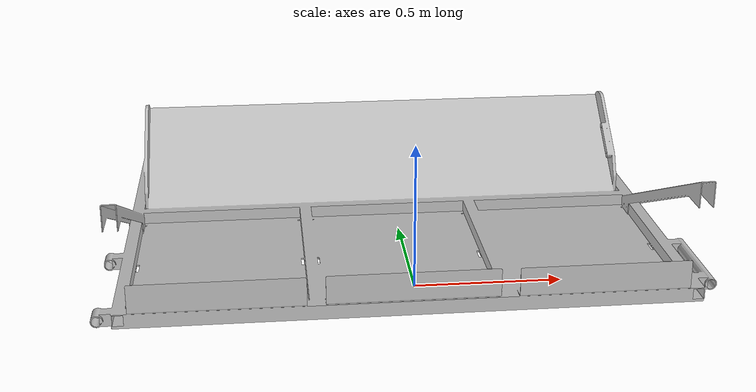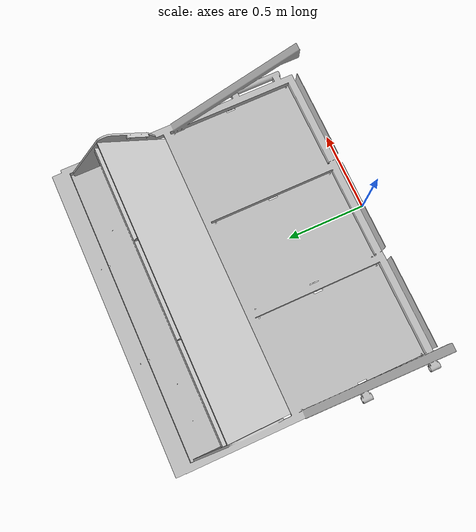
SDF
<?xml version="1.0" encoding="utf-8"?>
<sdf version="1.5">
  <model name="Source">
    <pose>0 0 -3.71615523363283E-17 0 0 0</pose>
    <plugin name="clock" filename="libgz_clock.so">
      <topic>/gazebo/frc/time</topic>
    </plugin>
    <link name="Body">
      <gravity>1</gravity>
      <self_collide>0</self_collide>
      <pose>0.00574865968713256 0.878534998221606 -0.0496166789420299 0 0 0</pose>
      <must_be_base_link>1</must_be_base_link>
      <velocity_decay>
        <linear>0</linear>
        <angular>0</angular>
      </velocity_decay>
      <inertial>
        <mass>62.9150817242115</mass>
        <pose>0 0 0 0 0 0</pose>
        <inertia>
          <ixx>13.8177900748834</ixx>
          <ixy>0.170451835212243</ixy>
          <ixz>0.00241372922292607</ixz>
          <iyy>12.851383986616</iyy>
          <iyz>0.330432251374542</iyz>
          <izz>25.9868317828147</izz>
        </inertia>
      </inertial>
      <collision name="Body_collision">
        <pose>1.00707634031287 -0.878534998221605 -0.0578975847679964 0 0 0</pose>
        <geometry>
          <mesh>
            <scale>1 1 1</scale>
            <uri>model://Source/meshes/Body_col.STL</uri>
          </mesh>
        </geometry>
        <surface>
          <contact>
            <ode />
          </contact>
          <friction>
            <ode>
              <mu>0</mu>
              <mu2>0</mu2>
            </ode>
          </friction>
        </surface>
      </collision>
      <visual name="Body_visual">
        <pose>1.00707634031287 -0.878534998221605 -0.0578975847679964 0 0 0</pose>
        <material>
          <ambient>0.752941176470588 0.752941176470588 0.752941176470588 1</ambient>
          <diffuse>0.752941176470588 0.752941176470588 0.752941176470588 1</diffuse>
        </material>
        <geometry>
          <mesh>
            <scale>1 1 1</scale>
            <uri>model://Source/meshes/Body.STL</uri>
          </mesh>
        </geometry>
      </visual>
    </link>
  </model>
</sdf>
